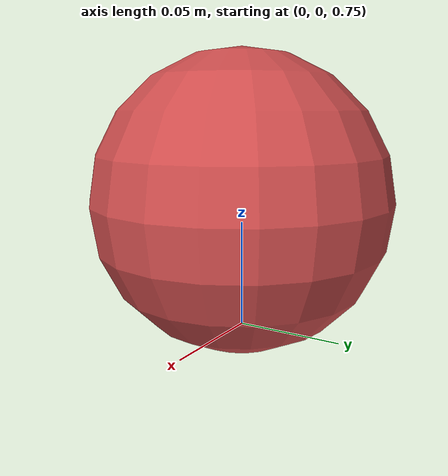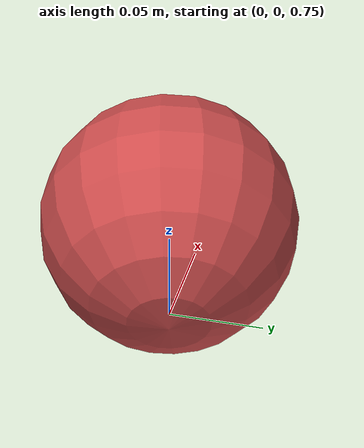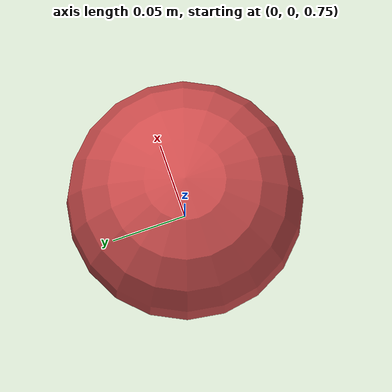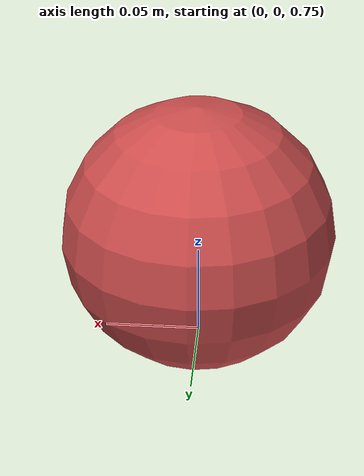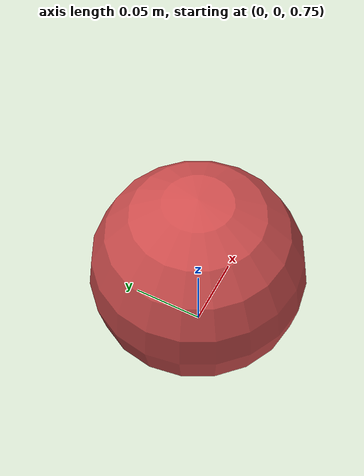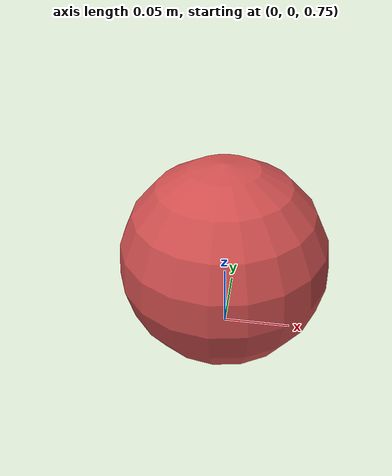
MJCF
<mujoco model="drop_000">
  <option timestep="0.001" gravity="0 0 -9.81"/>

  <visual>
    <headlight ambient="0.5 0.5 0.5"/>
  </visual>

  <asset>
    <texture name="grid" type="2d" builtin="checker" width="512" height="512" rgb1="0.2 0.3 0.4" rgb2="0.3 0.4 0.5"/>
    <material name="grid" texture="grid" texrepeat="1 1" reflectance="0.2"/>
    <material name="finger" rgba="0.8 0.3 0.3 1.0"/>
  </asset>

  <worldbody>
    <!-- Ground plane -->
    <geom name="floor" type="plane" size="2 2 0.1" material="grid"
          condim="6" friction="0.6335165145537789 0.005 0.0001" solref="0.02 0.6797873676739794"/>

    <!-- Sphere -->
    <body name="fingertip" pos="0 0 0.8110933770015406">
      <freejoint/>
      <geom name="finger" type="sphere" size="0.07057670813898194" mass="0.10639376303539487" material="finger"
            condim="6" friction="0.6335165145537789 0.005 0.0001" solref="0.02 0.6797873676739794"/>
      <site name="contact_site" pos="0 0 0" size="0.001"/>
    </body>
  </worldbody>

  <sensor>
    <touch name="finger_touch" site="contact_site"/>
    <framepos name="finger_pos" objtype="site" objname="contact_site"/>
    <framequat name="finger_quat" objtype="site" objname="contact_site"/>
    <framelinvel name="finger_vel" objtype="site" objname="contact_site"/>
  </sensor>
</mujoco>
